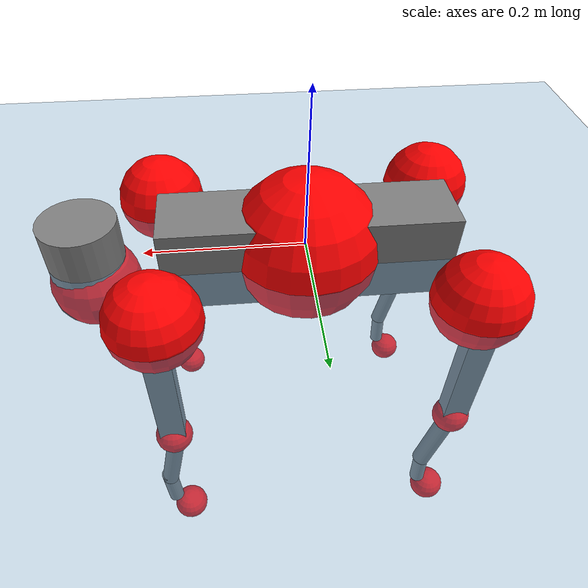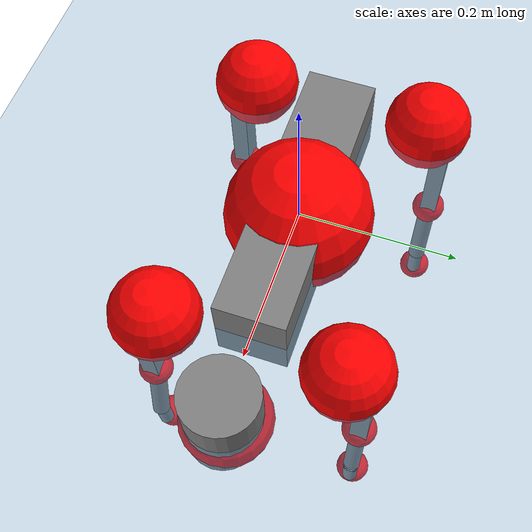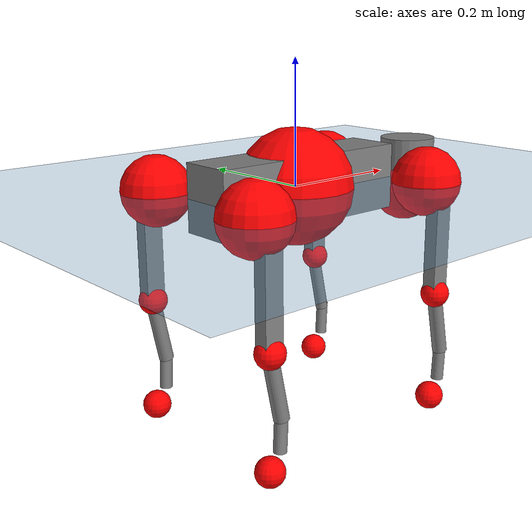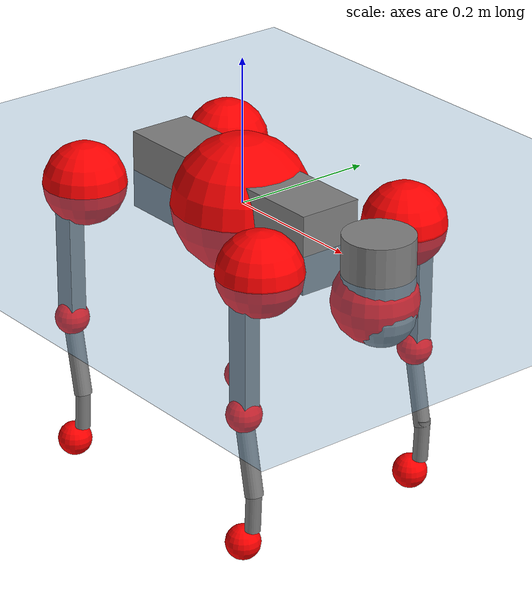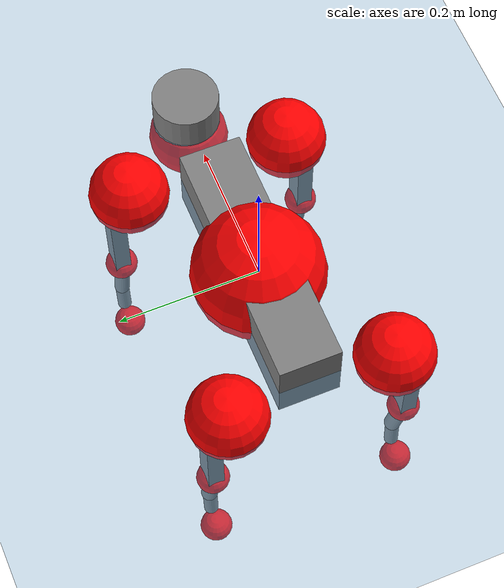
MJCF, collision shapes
<mujoco model="go2">
  <compiler angle="radian" assetdir="assets" balanceinertia="true" inertiafromgeom="false"/>

  <option timestep="0.005" density="1.2" viscosity="2e-05"/>

  <size nkey="1"/>

  <visual>
    <quality shadowsize="8192"/>
    <map shadowclip="0.5"/>
  </visual>

  <default>
    <default class="/">
      <geom contype="0" conaffinity="0" group="1" solref="-1000 -80"/>
      <site size="0.01 0.005 0.005" group="5"/>
      <general forcelimited="true" biastype="affine" gainprm="20" biasprm="0 -20 -0.5"/>
      <default class="go2">
        <joint armature="0.01" damping="0.01" frictionloss="0.2"/>
        <geom condim="1" margin="0.001"/>
        <default class="visual">
          <geom type="mesh" group="2"/>
        </default>
        <default class="collision">
          <geom group="3"/>
          <default class="foot">
            <geom size="0.022 0 0" condim="6" priority="1" friction="0.8 0.02 0.01" solimp="0.015 1 0.022"/>
          </default>
        </default>
        <default class="reward_collision_sphere">
          <geom group="5" rgba="1 0 0 1"/>
        </default>
      </default>
    </default>
  </default>

  <asset>
    <texture type="skybox" colorspace="auto" name="//unnamed_texture_0" builtin="gradient" rgb1="0.95 0.95 0.95" rgb2="0.95 0.95 0.95" width="100" height="600"/>
    <texture type="2d" colorspace="auto" name="texplane" builtin="checker" rgb1="0.345 0.575 0.748" rgb2="0.345 0.575 0.748" markrgb="1 1 1" width="512" height="512"/>
    <material name="MatPlane" class="/" texture="texplane" texuniform="true" texrepeat="2 2" specular="0.9"/>
    <material name="metal" class="/" rgba="0.9 0.95 0.95 1"/>
    <material name="black" class="/" rgba="0 0 0 1"/>
    <material name="white" class="/"/>
    <material name="gray" class="/" rgba="0.671705 0.692426 0.77427 1"/>
    <mesh name="base_0" class="/" file="base_0.obj"/>
    <mesh name="base_1" class="/" file="base_1.obj"/>
    <mesh name="base_2" class="/" file="base_2.obj"/>
    <mesh name="base_3" class="/" file="base_3.obj"/>
    <mesh name="base_4" class="/" file="base_4.obj"/>
    <mesh name="hip_0" class="/" file="hip_0.obj"/>
    <mesh name="hip_1" class="/" file="hip_1.obj"/>
    <mesh name="thigh_0" class="/" file="thigh_0.obj"/>
    <mesh name="thigh_1" class="/" file="thigh_1.obj"/>
    <mesh name="thigh_mirror_0" class="/" file="thigh_mirror_0.obj"/>
    <mesh name="thigh_mirror_1" class="/" file="thigh_mirror_1.obj"/>
    <mesh name="calf_0" class="/" file="calf_0.obj"/>
    <mesh name="calf_1" class="/" file="calf_1.obj"/>
    <mesh name="calf_mirror_0" class="/" file="calf_mirror_0.obj"/>
    <mesh name="calf_mirror_1" class="/" file="calf_mirror_1.obj"/>
    <mesh name="foot" class="/" file="foot.obj"/>
  </asset>

  <worldbody>
    <geom name="floor" class="/" size="100 100 0.125" type="plane" group="0" material="MatPlane"/>
    <light name="toplight_shadow" class="/" pos="0 0 5" dir="0.0990148 0.0990148 -0.990148" type="directional" ambient="0.04 0.04 0.04" diffuse="0.55 0.55 0.55" specular="0.12 0.12 0.12"/>
    <light name="toplight_fill" class="/" pos="0 0 5" dir="0.0990148 0.0990148 -0.990148" type="directional" castshadow="false" ambient="0.04 0.04 0.04" diffuse="0.3 0.3 0.3" specular="0.08 0.08 0.08"/>
    <body name="trunk" childclass="go2" pos="-7.09151e-05 -6.06108e-05 0.000513237" quat="1 8.63368e-07 4.34885e-05 0.000139328">
      <inertial pos="0.0196561 0.000809569 -0.00479951" quat="-0.000649687 0.713461 -0.00170689 0.700692" mass="5.8828" diaginertia="0.0808384 0.106336 0.0123376"/>
      <joint name="//unnamed_joint_0" type="free" armature="0" damping="0" frictionloss="0"/>
      <geom name="//unnamed_geom_1" class="visual" material="black" mesh="base_0"/>
      <geom name="//unnamed_geom_2" class="visual" material="black" mesh="base_1"/>
      <geom name="//unnamed_geom_3" class="visual" material="black" mesh="base_2"/>
      <geom name="//unnamed_geom_4" class="visual" material="white" mesh="base_3"/>
      <geom name="//unnamed_geom_5" class="visual" material="gray" mesh="base_4"/>
      <geom name="trunk_1" class="collision" size="0.177164 0.0440319 0.053686" type="box"/>
      <geom name="trunk_2" class="collision" size="0.047093 0.0423837" pos="0.268538 0 0.00869415" type="cylinder"/>
      <geom name="trunk_3" class="collision" size="0.0442674" pos="0.276076 0 -0.0521649"/>
      <geom name="//unnamed_geom_9" class="reward_collision_sphere" size="0.094186"/>
      <geom name="//unnamed_geom_10" class="reward_collision_sphere" size="0.0565116" pos="0.263827 0 -0.0391237"/>
      <site name="imu" pos="-0.0263916 0.00476384 0.0337439" size="0.0094186"/>
      <camera name="track" pos="0 -2.02785 0" quat="0.707107 0.707107 0 0" mode="trackcom"/>
      <camera name="ego_camera" pos="0.293979 0 0.0391237" quat="-0.5 -0.5 0.5 0.5"/>
      <body name="FL_hip" pos="0.181372 0.0481166 0.00102397" quat="1 -7.49658e-06 4.27087e-05 -2.93671e-05">
        <inertial pos="-0.00532114 0.00242796 0.000802" quat="0.495363 0.498514 0.506869 0.499183" mass="0.566704" diaginertia="0.000658089 0.000647295 0.000235995"/>
        <joint name="FL_hip_joint" pos="0 0 0" axis="0.999991 -0.00278025 -0.00335705" stiffness="9.6722e-05" range="-1.03332 1.05116" armature="0.00901897" damping="0.00185857" frictionloss="0.186959"/>
        <geom name="//unnamed_geom_11" class="visual" material="metal" mesh="hip_0"/>
        <geom name="//unnamed_geom_12" class="visual" material="gray" mesh="hip_1"/>
        <geom name="//unnamed_geom_13" class="collision" size="0.0433256 0.0188372" pos="0 0.081114 0" quat="0.707107 0.707107 0 0" type="cylinder"/>
        <geom name="//unnamed_geom_14" class="reward_collision_sphere" size="0.0565116" pos="0 0.0709747 0"/>
        <body name="FL_thigh" pos="-0.000148256 0.096707 0.00161171" quat="1 -2.58799e-06 -1.64688e-06 -5.49331e-07">
          <inertial pos="-0.00338526 -0.0225381 -0.0273939" quat="0.829192 0.0833903 -0.0198341 0.552353" mass="0.957837" diaginertia="0.00443885 0.00620423 0.000426351"/>
          <joint name="FL_thigh_joint" pos="0 0 0" axis="0.00168354 0.999998 -0.00136905" stiffness="0.00609068" range="-1.55175 3.47368" armature="0.00955196" damping="0.00343265" frictionloss="0.18991"/>
          <geom name="//unnamed_geom_15" class="visual" material="metal" mesh="thigh_0"/>
          <geom name="//unnamed_geom_16" class="visual" material="gray" mesh="thigh_1"/>
          <geom name="//unnamed_geom_17" class="collision" size="0.100308 0.0115378 0.0160116" pos="0 0 -0.0925927" quat="0.707107 0 0.707107 0" type="box"/>
          <body name="FL_calf" pos="0.000136652 -0.00127931 -0.185249" quat="1 5.96057e-05 0.000398341 -0.000139893">
            <inertial pos="0.00612268 -0.000524578 -0.122344" quat="0.710862 0.00187605 -0.00450331 0.703315" mass="0.203956" diaginertia="0.00110811 0.00155716 2.64695e-05"/>
            <joint name="FL_calf_joint" pos="0 0 0" axis="-0.00521349 0.999984 0.0020831" stiffness="0.00103094" range="-2.71765 -0.847113" armature="0.00967761" damping="0" frictionloss="0.193225"/>
            <geom name="//unnamed_geom_18" class="visual" material="gray" mesh="calf_0"/>
            <geom name="//unnamed_geom_19" class="visual" material="black" mesh="calf_1"/>
            <geom name="FL_calf0" class="collision" size="0.0113023 0.0565116" pos="0.00753792 0 -0.0521649" quat="0.994493 0 -0.104807 0" type="cylinder"/>
            <geom name="//unnamed_geom_21" class="collision" size="0.0103605 0.0306104" pos="0.0188448 0 -0.128673" quat="0.999688 0 0.0249974 0" type="cylinder"/>
            <geom name="//unnamed_geom_22" class="visual" pos="0 0 -0.185185" quat="1 0 0 0" material="black" mesh="foot"/>
            <geom name="FL_foot" class="foot" size="0.0177634" pos="-0.00188448 0 -0.185185"/>
            <geom name="//unnamed_geom_24" class="reward_collision_sphere" size="0.0235465"/>
            <geom name="//unnamed_geom_25" class="reward_collision_sphere" size="0.0235465" pos="-0.00188448 0 -0.185185"/>
            <site name="FL_foot" class="foot" pos="-0.00188448 0 -0.185185" size="0.0094186"/>
          </body>
        </body>
      </body>
      <body name="FR_hip" pos="0.181778 -0.0455536 0.000294038" quat="1 -1.58006e-05 0.000110183 -6.1461e-05">
        <inertial pos="-0.0048931 -0.00190876 -0.000828014" quat="0.497943 0.506322 0.498998 0.496681" mass="0.560807" diaginertia="0.000652542 0.000641335 0.000238564"/>
        <joint name="FR_hip_joint" pos="0 0 0" axis="1 6.3767e-05 0.000698977" range="-1.05217 1.03174" armature="0.00941848" damping="0.0114805" frictionloss="0.195917"/>
        <geom name="//unnamed_geom_26" class="visual" pos="0 1.25891e-09 5.39971e-08" quat="4.63268e-05 1 0 0" material="metal" mesh="hip_0"/>
        <geom name="//unnamed_geom_27" class="visual" pos="0 2.04084e-09 -1.33555e-07" quat="4.63268e-05 1 0 0" material="gray" mesh="hip_1"/>
        <geom name="//unnamed_geom_28" class="collision" size="0.0433256 0.0188372" pos="0 -0.081114 0" quat="0.707107 0.707107 0 0" type="cylinder"/>
        <geom name="//unnamed_geom_29" class="reward_collision_sphere" size="0.0565116" pos="0 -0.0709747 0"/>
        <body name="FR_thigh" pos="0.00175365 -0.0968898 -9.76299e-05" quat="1 0.000218811 -9.49875e-05 -0.000171114">
          <inertial pos="-0.00361477 0.0222338 -0.0283049" quat="0.551667 -0.0199548 0.0854201 0.829439" mass="0.991757" diaginertia="0.00445299 0.00644054 0.000447117"/>
          <joint name="FR_thigh_joint" pos="0 0 0" axis="0.00675277 -0.999977 0.000233162" stiffness="0.000300986" range="-3.46058 1.55202" armature="0.00936957" damping="0.00970574" frictionloss="0.185699"/>
          <geom name="//unnamed_geom_30" class="visual" material="metal" mesh="thigh_mirror_0"/>
          <geom name="//unnamed_geom_31" class="visual" material="gray" mesh="thigh_mirror_1"/>
          <geom name="//unnamed_geom_32" class="collision" size="0.100308 0.0115378 0.0160116" pos="0 0 -0.0925927" quat="0.707107 0 0.707107 0" type="box"/>
          <body name="FR_calf" pos="0.000660243 -0.000812675 -0.18593" quat="1 0.000196933 5.8114e-05 7.99723e-05">
            <inertial pos="0.00641578 0.000381107 -0.12199" quat="0.703599 -0.00439153 0.0010483 0.710583" mass="0.197708" diaginertia="0.00109525 0.0015744 2.64915e-05"/>
            <joint name="FR_calf_joint" pos="0 0 0" axis="-0.00901813 -0.999957 -0.00195231" range="0.834719 2.71855" armature="0.00945358" damping="0.00957591" frictionloss="0.173995"/>
            <geom name="//unnamed_geom_33" class="visual" material="gray" mesh="calf_mirror_0"/>
            <geom name="//unnamed_geom_34" class="visual" material="black" mesh="calf_mirror_1"/>
            <geom name="FR_calf0" class="collision" size="0.0122442 0.0565116" pos="0.0094224 0 -0.0521649" quat="0.995004 0 -0.0998334 0" type="cylinder"/>
            <geom name="//unnamed_geom_36" class="collision" size="0.0103605 0.0306104" pos="0.0188448 0 -0.128673" quat="0.999688 0 0.0249974 0" type="cylinder"/>
            <geom name="//unnamed_geom_37" class="visual" pos="0 0 -0.185185" quat="1 0 0 0" material="black" mesh="foot"/>
            <geom name="FR_foot" class="foot" size="0.0216973" pos="-0.00188448 0 -0.185185"/>
            <geom name="//unnamed_geom_39" class="reward_collision_sphere" size="0.0235465"/>
            <geom name="//unnamed_geom_40" class="reward_collision_sphere" size="0.0235465" pos="-0.00188448 0 -0.185185"/>
            <site name="FR_foot" class="foot" pos="-0.00188448 0 -0.185185" size="0.0094186"/>
          </body>
        </body>
      </body>
      <body name="RL_hip" pos="-0.182788 0.0475409 5.42258e-05" quat="1 9.78976e-05 3.18856e-05 -0.000140672">
        <inertial pos="0.00597183 0.00216159 0.000482222" quat="0.505022 0.502477 0.49999 0.492422" mass="0.554952" diaginertia="0.000653048 0.000632737 0.000240989"/>
        <joint name="RL_hip_joint" pos="0 0 0" axis="-0.9999 -0.0137659 -0.00325699" range="-1.04168 1.06439" armature="0.00938061" damping="0.0153803" frictionloss="0.179294"/>
        <geom name="//unnamed_geom_41" class="visual" pos="-6.3442e-10 0 -1.24361e-07" quat="4.63268e-05 0 1 0" material="metal" mesh="hip_0"/>
        <geom name="//unnamed_geom_42" class="visual" pos="-1.02847e-09 0 -1.1029e-07" quat="4.63268e-05 0 1 0" material="gray" mesh="hip_1"/>
        <geom name="//unnamed_geom_43" class="collision" size="0.0433256 0.0188372" pos="0 0.081114 0" quat="0.707107 0.707107 0 0" type="cylinder"/>
        <geom name="//unnamed_geom_44" class="reward_collision_sphere" size="0.0565116" pos="0 0.0709747 0"/>
        <body name="RL_thigh" pos="9.81699e-05 0.0966146 -0.000371988" quat="1 -0.000226061 0.000378291 0.000210883">
          <inertial pos="-0.0029903 -0.0218125 -0.0284493" quat="0.827904 0.085742 -0.0217598 0.553849" mass="0.972994" diaginertia="0.00443897 0.0064036 0.000436128"/>
          <joint name="RL_thigh_joint" pos="0 0 0" axis="-0.00115214 0.999999 -0.00127661" range="-0.525436 4.53377" armature="0.00939619" damping="0.00992464" frictionloss="0.189374"/>
          <geom name="//unnamed_geom_45" class="visual" material="metal" mesh="thigh_0"/>
          <geom name="//unnamed_geom_46" class="visual" material="gray" mesh="thigh_1"/>
          <geom name="//unnamed_geom_47" class="collision" size="0.100308 0.0115378 0.0160116" pos="0 0 -0.0925927" quat="0.707107 0 0.707107 0" type="box"/>
          <body name="RL_calf" pos="0.000369595 -0.000600263 -0.185563" quat="1 3.54257e-05 -0.000111259 -2.83949e-05">
            <inertial pos="0.00570215 -0.000255633 -0.122315" quat="0.710637 0.00164741 -0.00474288 0.703541" mass="0.204651" diaginertia="0.00113401 0.00161661 2.75361e-05"/>
            <joint name="RL_calf_joint" pos="0 0 0" axis="-0.0087441 0.99995 -0.00490726" range="-2.72381 -0.872055" armature="0.00943338" damping="0" frictionloss="0.179677"/>
            <geom name="//unnamed_geom_48" class="visual" material="gray" mesh="calf_0"/>
            <geom name="//unnamed_geom_49" class="visual" material="black" mesh="calf_1"/>
            <geom name="RL_calf0" class="collision" size="0.0122442 0.0565116" pos="0.0094224 0 -0.0521649" quat="0.995004 0 -0.0998334 0" type="cylinder"/>
            <geom name="//unnamed_geom_51" class="collision" size="0.0103605 0.0306104" pos="0.0188448 0 -0.128673" quat="0.999688 0 0.0249974 0" type="cylinder"/>
            <geom name="//unnamed_geom_52" class="visual" pos="0 0 -0.185185" quat="1 0 0 0" material="black" mesh="foot"/>
            <geom name="RL_foot" class="foot" size="0.0171568" pos="-0.00188448 0 -0.185185"/>
            <geom name="//unnamed_geom_54" class="reward_collision_sphere" size="0.0235465"/>
            <geom name="//unnamed_geom_55" class="reward_collision_sphere" size="0.0235465" pos="-0.00188448 0 -0.185185"/>
            <site name="RL_foot" class="foot" pos="-0.00188448 0 -0.185185" size="0.0094186"/>
          </body>
        </body>
      </body>
      <body name="RR_hip" pos="-0.182227 -0.0488233 -0.00141232" quat="1 -4.6652e-06 -0.000204774 0.000275451">
        <inertial pos="0.00543312 -0.00289533 0.000710956" quat="0.503327 0.500362 0.495351 0.500925" mass="0.571456" diaginertia="0.000655712 0.000652204 0.000240332"/>
        <joint name="RR_hip_joint" pos="0 0 0" axis="-0.999982 0.000873686 -0.00586593" stiffness="0.00147205" range="-1.05188 1.05498" armature="0.00918504" damping="0.0110273" frictionloss="0.180505"/>
        <geom name="//unnamed_geom_56" class="visual" pos="6.36902e-10 1.25891e-09 -1.78358e-07" quat="2.14617e-09 4.63268e-05 4.63268e-05 -1" material="metal" mesh="hip_0"/>
        <geom name="//unnamed_geom_57" class="visual" pos="1.02233e-09 2.04084e-09 2.32649e-08" quat="2.14617e-09 4.63268e-05 4.63268e-05 -1" material="gray" mesh="hip_1"/>
        <geom name="//unnamed_geom_58" class="collision" size="0.0433256 0.0188372" pos="0 -0.081114 0" quat="0.707107 0.707107 0 0" type="cylinder"/>
        <geom name="//unnamed_geom_59" class="reward_collision_sphere" size="0.0565116" pos="0 -0.0709747 0"/>
        <body name="RR_thigh" pos="0.000128222 -0.0974253 -0.00280177" quat="1 0.000156004 -0.000116794 -7.67239e-05">
          <inertial pos="-0.00341533 0.0242917 -0.0294532" quat="0.551822 -0.020032 0.0841851 0.82946" mass="0.944954" diaginertia="0.00434407 0.00614817 0.000427081"/>
          <joint name="RR_thigh_joint" pos="0 0 0" axis="-0.00915978 -0.999956 -0.00224" range="-4.55373 0.507131" armature="0.0102062" damping="0.0174256" frictionloss="0.186094"/>
          <geom name="//unnamed_geom_60" class="visual" material="metal" mesh="thigh_mirror_0"/>
          <geom name="//unnamed_geom_61" class="visual" material="gray" mesh="thigh_mirror_1"/>
          <geom name="//unnamed_geom_62" class="collision" size="0.100308 0.0115378 0.0160116" pos="0 0 -0.0925927" quat="0.707107 0 0.707107 0" type="box"/>
          <body name="RR_calf" pos="0.000650119 -0.000707925 -0.18551" quat="1 1.36965e-05 -1.80058e-06 -6.74246e-05">
            <inertial pos="0.00478108 0.000917427 -0.123309" quat="0.700621 -0.00685566 -0.00193072 0.713498" mass="0.202297" diaginertia="0.00112671 0.00159111 2.72508e-05"/>
            <joint name="RR_calf_joint" pos="0 0 0" axis="-0.000107266 -0.999999 -0.00169749" stiffness="0.00116039" range="0.838049 2.73722" armature="0.00954857" damping="0.00962194" frictionloss="0.193019"/>
            <geom name="//unnamed_geom_63" class="visual" material="gray" mesh="calf_mirror_0"/>
            <geom name="//unnamed_geom_64" class="visual" material="black" mesh="calf_mirror_1"/>
            <geom name="RR_calf0" class="collision" size="0.0122442 0.0565116" pos="0.0094224 0 -0.0521649" quat="0.995004 0 -0.0998334 0" type="cylinder"/>
            <geom name="//unnamed_geom_66" class="collision" size="0.0103605 0.0306104" pos="0.0188448 0 -0.128673" quat="0.999688 0 0.0249974 0" type="cylinder"/>
            <geom name="//unnamed_geom_67" class="visual" pos="0 0 -0.185185" quat="1 0 0 0" material="black" mesh="foot"/>
            <geom name="RR_foot" class="foot" size="0.0210295" pos="-0.00188448 0 -0.185185"/>
            <geom name="//unnamed_geom_69" class="reward_collision_sphere" size="0.0235465"/>
            <geom name="//unnamed_geom_70" class="reward_collision_sphere" size="0.0235465" pos="-0.00188448 0 -0.185185"/>
            <site name="RR_foot" class="foot" pos="-0.00188448 0 -0.185185" size="0.0094186"/>
          </body>
        </body>
      </body>
    </body>
  </worldbody>

  <contact>
    <pair class="/" geom1="floor" geom2="FL_foot" name="//unnamed_contact_0"/>
    <pair class="/" geom1="floor" geom2="FR_foot" name="//unnamed_contact_1"/>
    <pair class="/" geom1="floor" geom2="RL_foot" name="//unnamed_contact_2"/>
    <pair class="/" geom1="floor" geom2="RR_foot" name="//unnamed_contact_3"/>
  </contact>

  <actuator>
    <general name="FL_hip" class="/" joint="FL_hip_joint" forcerange="-23.0466 23.0466" gainprm="19.4072" biasprm="0 -19.4072 -0.462981"/>
    <general name="FL_thigh" class="/" joint="FL_thigh_joint" forcerange="-21.1106 21.1106" gainprm="19.4072" biasprm="0 -19.4072 -0.462981"/>
    <general name="FL_calf" class="/" joint="FL_calf_joint" forcerange="-42.6234 42.6234" gainprm="19.4072" biasprm="0 -19.4072 -0.462981"/>
    <general name="FR_hip" class="/" joint="FR_hip_joint" forcerange="-22.3487 22.3487" gainprm="19.4072" biasprm="0 -19.4072 -0.462981"/>
    <general name="FR_thigh" class="/" joint="FR_thigh_joint" forcerange="-21.7812 21.7812" gainprm="19.4072" biasprm="0 -19.4072 -0.462981"/>
    <general name="FR_calf" class="/" joint="FR_calf_joint" forcerange="-43.8951 43.8951" gainprm="19.4072" biasprm="0 -19.4072 -0.462981"/>
    <general name="RL_hip" class="/" joint="RL_hip_joint" forcerange="-21.7504 21.7504" gainprm="19.4072" biasprm="0 -19.4072 -0.462981"/>
    <general name="RL_thigh" class="/" joint="RL_thigh_joint" forcerange="-22.3519 22.3519" gainprm="19.4072" biasprm="0 -19.4072 -0.462981"/>
    <general name="RL_calf" class="/" joint="RL_calf_joint" forcerange="-44.3122 44.3122" gainprm="19.4072" biasprm="0 -19.4072 -0.462981"/>
    <general name="RR_hip" class="/" joint="RR_hip_joint" forcerange="-21.1388 21.1388" gainprm="19.4072" biasprm="0 -19.4072 -0.462981"/>
    <general name="RR_thigh" class="/" joint="RR_thigh_joint" forcerange="-21.9007 21.9007" gainprm="19.4072" biasprm="0 -19.4072 -0.462981"/>
    <general name="RR_calf" class="/" joint="RR_calf_joint" forcerange="-42.0892 42.0892" gainprm="19.4072" biasprm="0 -19.4072 -0.462981"/>
  </actuator>

  <sensor>
    <gyro site="imu" name="imu_angular_velocity"/>
    <velocimeter site="imu" name="imu_linear_velocity"/>
    <framelinvel objtype="site" objname="FL_foot" name="FL_foot_global_linear_velocity"/>
    <framelinvel objtype="site" objname="FR_foot" name="FR_foot_global_linear_velocity"/>
    <framelinvel objtype="site" objname="RL_foot" name="RL_foot_global_linear_velocity"/>
    <framelinvel objtype="site" objname="RR_foot" name="RR_foot_global_linear_velocity"/>
  </sensor>

  <keyframe>
    <key name="home" qpos="0 0 0.325 1 0 0 0 0.1 0.8 -1.5 -0.1 -0.8 1.5 -0.1 0.8 -1.5 0.1 -0.8 1.5"/>
  </keyframe>
</mujoco>
